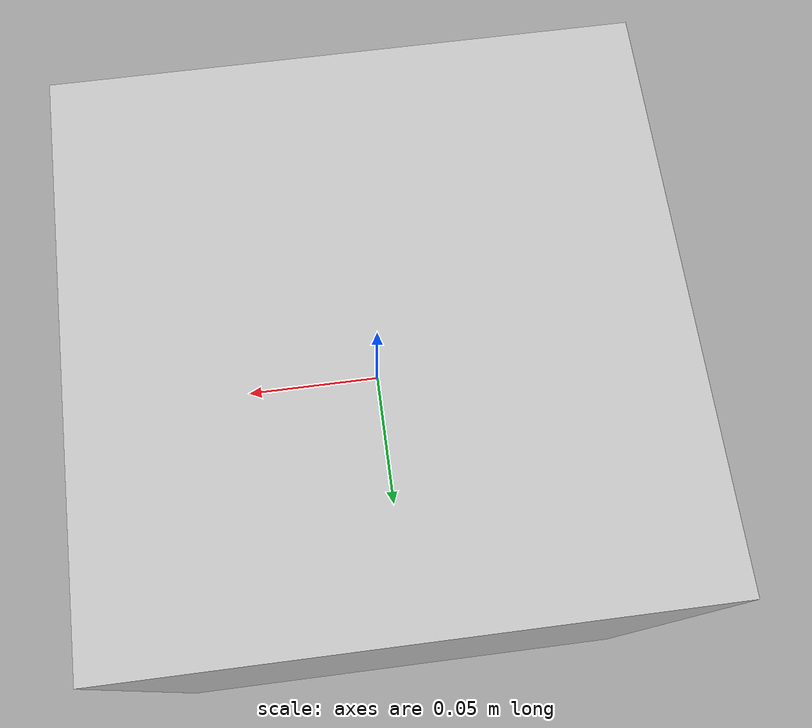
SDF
<?xml version="1.0" ?>
<sdf version="1.6">
  <model name="ssapang_box">
    <pose>0 0 0 0 0 0</pose>
    <link name="link">
	<inertial>
        <mass>0.001</mass>
        <inertia>
          <ixx>0.00016667</ixx>
          <ixy>0</ixy>
          <ixz>0</ixz>
          <iyy>0.00016667</iyy>
          <iyz>0.1</iyz>
          <izz>0.00016667</izz>
        </inertia>
        <pose>0 0 0 0 -0 0</pose>
      </inertial>
      <collision name='collision'>
        <laser_retro>0</laser_retro>
        <max_contacts>10</max_contacts>
        <pose>0 0 0 0 -0 0</pose>
        <geometry>
          <box>
            <size>0.3 0.3 0.3</size>
          </box>
        </geometry>
        <surface>
          <friction>
            <ode>
              <mu>1</mu>
              <mu2>1</mu2>
              <fdir1>0 0 0</fdir1>
              <slip1>0</slip1>
              <slip2>0</slip2>
            </ode>
            <torsional>
              <coefficient>1</coefficient>
              <patch_radius>0</patch_radius>
              <surface_radius>0</surface_radius>
              <use_patch_radius>1</use_patch_radius>
              <ode>
                <slip>0</slip>
              </ode>
            </torsional>
          </friction>
          <bounce>
            <restitution_coefficient>0</restitution_coefficient>
            <threshold>1e+06</threshold>
          </bounce>
          <contact>
            <collide_without_contact>0</collide_without_contact>
            <collide_without_contact_bitmask>1</collide_without_contact_bitmask>
            <collide_bitmask>1</collide_bitmask>
            <ode>
              <soft_cfm>0</soft_cfm>
              <soft_erp>0.2</soft_erp>
              <kp>1e+13</kp>
              <kd>1</kd>
              <max_vel>0.01</max_vel>
              <min_depth>0</min_depth>
            </ode>
            <bullet>
              <split_impulse>1</split_impulse>
              <split_impulse_penetration_threshold>-0.01</split_impulse_penetration_threshold>
              <soft_cfm>0</soft_cfm>
              <soft_erp>0.2</soft_erp>
              <kp>1e+13</kp>
              <kd>1</kd>
            </bullet>
          </contact>
        </surface>
      </collision>
      <visual name="visual">
        <pose>0 0 -0.15 0 0 0</pose>
        <geometry>
          <mesh>
            <uri>model://ssapang_box/meshes/cardboard_box.dae</uri>
            <scale>0.755591376 0.755591376 0.755591376</scale>
          </mesh>
        </geometry>
      </visual>
    </link>
  </model>
</sdf>
